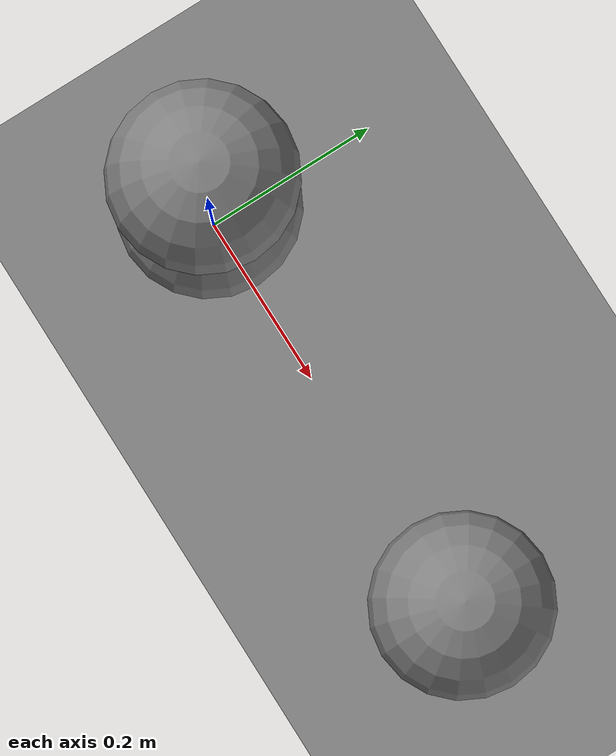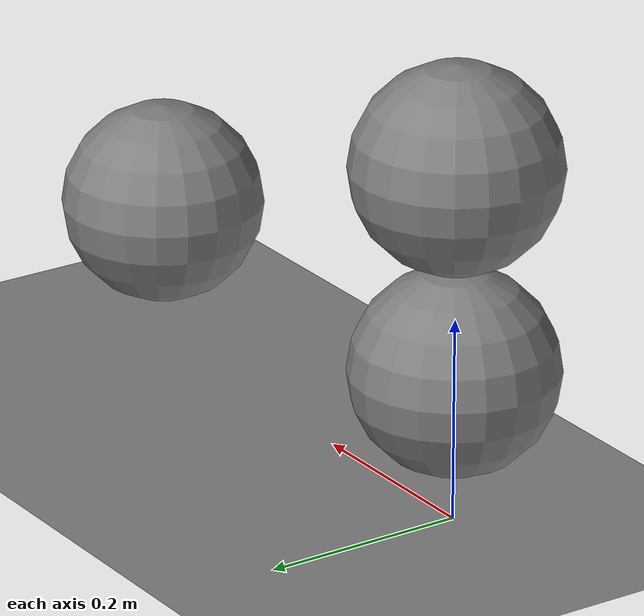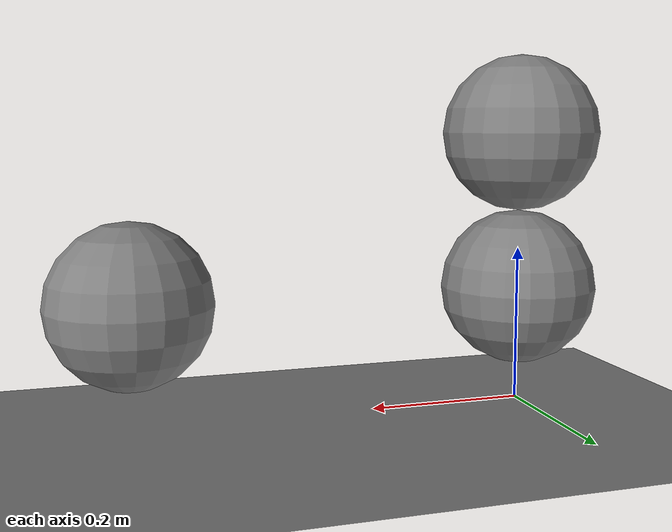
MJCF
<mujoco model="selective-bitmask">
  <option gravity="0 0 -9.81" timestep="0.002"/>
  <worldbody>
    <geom name="ground" type="plane" size="5 5 0.1"/>
    <body name="sphere_a" pos="0 0 0.15">
      <freejoint name="a_free"/>
      <geom name="a_geom" type="sphere" size="0.1" mass="1.0"
            contype="1" conaffinity="3"/>
    </body>
    <body name="sphere_b" pos="0 0 0.35">
      <freejoint name="b_free"/>
      <geom name="b_geom" type="sphere" size="0.1" mass="1.0"
            contype="2" conaffinity="2"/>
    </body>
    <body name="sphere_c" pos="0.5 0 0.15">
      <freejoint name="c_free"/>
      <geom name="c_geom" type="sphere" size="0.1" mass="1.0"
            contype="4" conaffinity="4"/>
    </body>
  </worldbody>
</mujoco>
